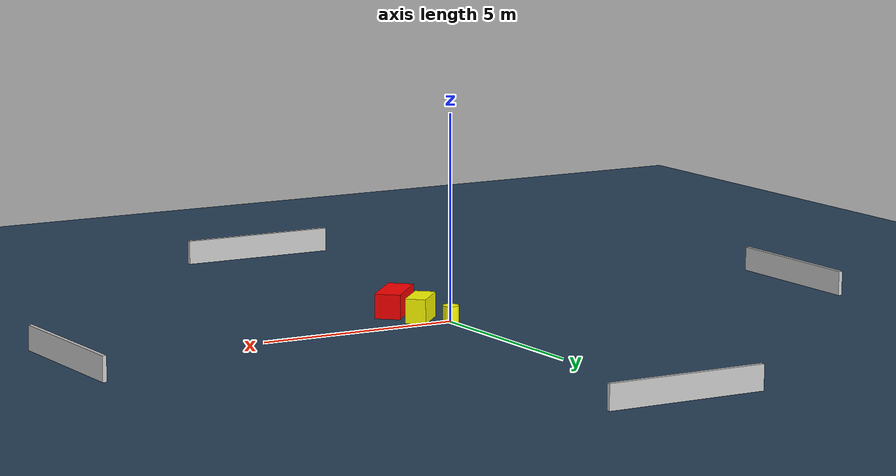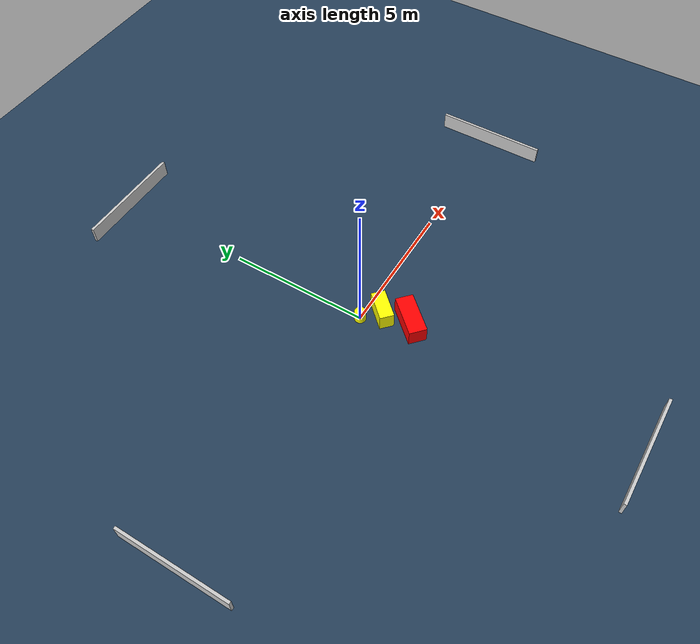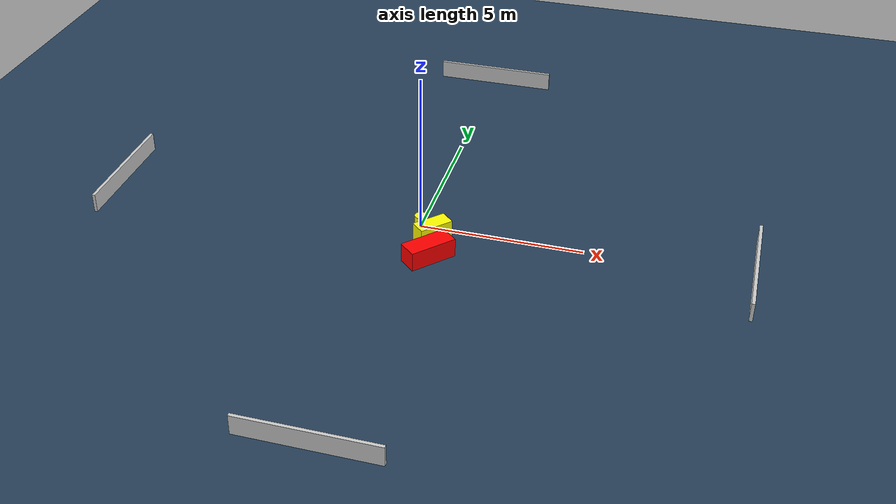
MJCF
<?xml version="1.0" ?>
<mujoco model="generated_environment">
  <option timestep="0.01" integrator="RK4" cone="elliptic"/>
  <default>
    <geom density="1"/>
  </default>
  <asset>
    <texture builtin="gradient" height="3072" name="skybox" rgb1="0.3 0.5 0.7" rgb2="0 0 0" type="skybox" width="512"/>
    <texture builtin="checker" height="300" name="groundplane" rgb1="0.2 0.3 0.4" rgb2="0.1 0.2 0.3" type="2d" width="300"/>
    <material name="groundplane" reflectance="0.2" texrepeat="5 5" texture="groundplane"/>
  </asset>
  <worldbody>
    <light dir="0 0 -1" directional="true" pos="0 0 1.5"/>
    <geom condim="3" friction="0.5 0.005 0.001" material="groundplane" name="floor" pos="0 0 0" size="0 0 0.05" type="plane"/>
    <body name="walls">
      <geom name="wall_1" condim="4" pos="-10.0 0.0 0.3" rgba="0.800000011920929 0.800000011920929 0.800000011920929 1.0" size="0.05 2.0 0.3" type="box"/>
      <geom name="wall_2" condim="4" pos="10.0 0.0 0.3" rgba="0.800000011920929 0.800000011920929 0.800000011920929 1.0" size="0.05 2.0 0.3" type="box"/>
      <geom name="wall_3" condim="4" pos="0.0 -10.0 0.3" rgba="0.800000011920929 0.800000011920929 0.800000011920929 1.0" size="2.0 0.05 0.3" type="box"/>
      <geom name="wall_4" condim="4" pos="0.0 10.0 0.3" rgba="0.800000011920929 0.800000011920929 0.800000011920929 1.0" size="2.0 0.05 0.3" type="box"/>
    </body>
    <body name="robot">
      <joint name="joint_x" type="slide" pos="0 0 0" axis="1 0 0"/>
      <joint name="joint_y" type="slide" pos="0 0 0" axis="0 1 0"/>
      <geom name="robot" type="cylinder" pos="0.0 0.0 0.2" size="0.2 0.2 0.0" mass="5.0" friction="1.0 0.005 0.0001" condim="4" rgba="1.0 1.0 0.0 1.0"/>
    </body>
    <body name="obstacle_1_movable">
      <geom name="obstacle_1_movable" condim="4" pos="0.5158596171328997 -0.5551425979270297 0.3" euler="0 0 46.770667402590355" friction="0.0 0.005 0.001" rgba="1.0 1.0 0.0 1.0" size="0.5377371197261207 0.2511214981196577 0.3" type="box" mass="0.1"/>
      <joint type="free"/>
    </body>
    <body name="obstacle_2_static">
      <geom name="obstacle_2_static" condim="4" pos="0.6646416837485092 -1.565208256055918 0.3" euler="0 0 137.6174221697589" friction="0.0 0.005 0.001" rgba="1.0 0.0 0.0 1.0" size="0.31452362074188955 0.742122406130916 0.3" type="box"/>
    </body>
  </worldbody>
  <actuator>
    <motor name="actuator_x" joint="joint_x" gear="1" ctrlrange="-1 1"/>
    <motor name="actuator_y" joint="joint_y" gear="1" ctrlrange="-1 1"/>
  </actuator>
</mujoco>
